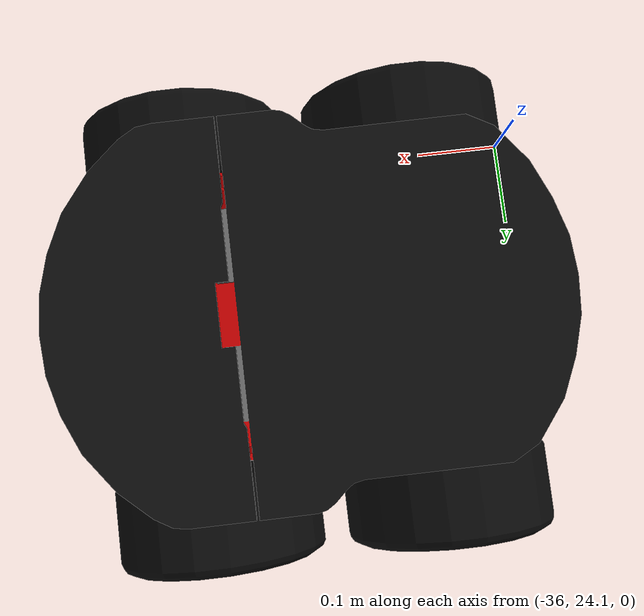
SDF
<sdf version="1.6">
 <world name="default">
  <model name="pioneer3at">
   <pose>-35.7368 24.3106 0.170004 0 0 -0.000102</pose>
   <static>0</static>
   <link name="chassis">
    <inertial>
     <mass>14</mass>
     <inertia>
      <ixx>0.147117</ixx>
      <ixy>0</ixy>
      <ixz>0</ixz>
      <iyy>0.334951</iyy>
      <iyz>0</iyz>
      <izz>0.397834</izz>
     </inertia>
    </inertial>
    <collision name="collision"><geometry><box><size>0.501 0.3 0.19</size></box></geometry></collision>
    <visual name="visual">
     <geometry><mesh><uri>model://pioneer3at/meshes/chassis.dae</uri></mesh></geometry>
    </visual>
   </link>
   <link name="right_front_wheel">
    <pose>0.125 -0.201 -0.06 1.5707 -0 0</pose>
    <inertial>
     <mass>1.5</mass>
     <inertia>
      <ixx>0.00524062</ixx>
      <iyy>0.00524062</iyy>
      <izz>0.009075</izz>
      <ixy>0</ixy>
      <ixz>0</ixz>
      <iyz>0</iyz>
     </inertia>
    </inertial>
    <collision name="collision">
     <geometry><cylinder><radius>0.11</radius><length>0.075</length></cylinder></geometry>
     <surface><friction><ode><mu>1</mu><mu2>1</mu2><slip1>0.5</slip1><slip2>0</slip2></ode></friction></surface>
    </collision>
    <visual name="visual">
     <geometry><mesh><uri>model://pioneer3at/meshes/wheel.dae</uri></mesh></geometry>
    </visual>
   </link>
   <link name="left_front_wheel">
    <pose>0.125 0.201 -0.06 1.5707 -0 0</pose>
    <inertial>
     <mass>1.5</mass>
     <inertia>
      <ixx>0.00524062</ixx>
      <iyy>0.00524062</iyy>
      <izz>0.009075</izz>
      <ixy>0</ixy>
      <ixz>0</ixz>
      <iyz>0</iyz>
     </inertia>
    </inertial>
    <collision name="collision">
     <geometry><cylinder><radius>0.11</radius><length>0.075</length></cylinder></geometry>
     <surface><friction><ode><mu>1</mu><mu2>1</mu2><slip1>0.5</slip1><slip2>0</slip2></ode></friction></surface>
    </collision>
    <visual name="visual">
     <geometry><mesh><uri>model://pioneer3at/meshes/wheel.dae</uri></mesh></geometry>
    </visual>
   </link>
   <link name="right_rear_wheel">
    <pose>-0.125 -0.201 -0.06 1.5707 -0 0</pose>
    <inertial>
     <mass>1.5</mass>
     <inertia>
      <ixx>0.00524062</ixx>
      <iyy>0.00524062</iyy>
      <izz>0.009075</izz>
      <ixy>0</ixy>
      <ixz>0</ixz>
      <iyz>0</iyz>
     </inertia>
    </inertial>
    <collision name="collision">
     <geometry><cylinder><radius>0.11</radius><length>0.075</length></cylinder></geometry>
     <surface><friction><ode><mu>1</mu><mu2>1</mu2><slip1>0.5</slip1><slip2>0</slip2></ode></friction></surface>
    </collision>
    <visual name="visual">
     <geometry><mesh><uri>model://pioneer3at/meshes/wheel.dae</uri></mesh></geometry>
    </visual>
   </link>
   <link name="left_rear_wheel">
    <pose>-0.125 0.201 -0.06 1.5707 -0 0</pose>
    <inertial>
     <mass>1.5</mass>
     <inertia>
      <ixx>0.00524062</ixx>
      <iyy>0.00524062</iyy>
      <izz>0.009075</izz>
      <ixy>0</ixy>
      <ixz>0</ixz>
      <iyz>0</iyz>
     </inertia>
    </inertial>
    <collision name="collision">
     <geometry><cylinder><radius>0.11</radius><length>0.075</length></cylinder></geometry>
     <surface><friction><ode><mu>1</mu><mu2>1</mu2><slip1>0.5</slip1><slip2>0</slip2></ode></friction></surface>
    </collision>
    <visual name="visual">
     <geometry><mesh><uri>model://pioneer3at/meshes/wheel.dae</uri></mesh></geometry>
    </visual>
   </link>
   <joint name="right_front" type="revolute">
    <child>right_front_wheel</child>
    <parent>chassis</parent>
    <axis>
     <xyz>0 1 0</xyz>
     <use_parent_model_frame>1</use_parent_model_frame>
     <limit><lower>-1e+16</lower><upper>1e+16</upper></limit>
     <dynamics><spring_reference>0</spring_reference><spring_stiffness>0</spring_stiffness></dynamics>
    </axis>
   </joint>
   <joint name="right_rear" type="revolute">
    <child>right_rear_wheel</child>
    <parent>chassis</parent>
    <axis>
     <xyz>0 1 0</xyz>
     <use_parent_model_frame>1</use_parent_model_frame>
     <limit><lower>-1e+16</lower><upper>1e+16</upper></limit>
     <dynamics><spring_reference>0</spring_reference><spring_stiffness>0</spring_stiffness></dynamics>
    </axis>
   </joint>
   <joint name="left_front" type="revolute">
    <child>left_front_wheel</child>
    <parent>chassis</parent>
    <axis>
     <xyz>0 1 0</xyz>
     <use_parent_model_frame>1</use_parent_model_frame>
     <limit><lower>-1e+16</lower><upper>1e+16</upper></limit>
     <dynamics><spring_reference>0</spring_reference><spring_stiffness>0</spring_stiffness></dynamics>
    </axis>
   </joint>
   <joint name="left_rear" type="revolute">
    <child>left_rear_wheel</child>
    <parent>chassis</parent>
    <axis>
     <xyz>0 1 0</xyz>
     <use_parent_model_frame>1</use_parent_model_frame>
     <limit><lower>-1e+16</lower><upper>1e+16</upper></limit>
     <dynamics><spring_reference>0</spring_reference><spring_stiffness>0</spring_stiffness></dynamics>
    </axis>
   </joint>
   <plugin name="SkidSteerDrivePlugin" filename="libSkidSteerDrivePlugin.so">
    <right_front>right_front</right_front>
    <right_rear>right_rear</right_rear>
    <left_front>left_front</left_front>
    <left_rear>left_rear</left_rear>
    <MaxForce>5.0</MaxForce>
   </plugin>
  </model>
 </world>
</sdf>
